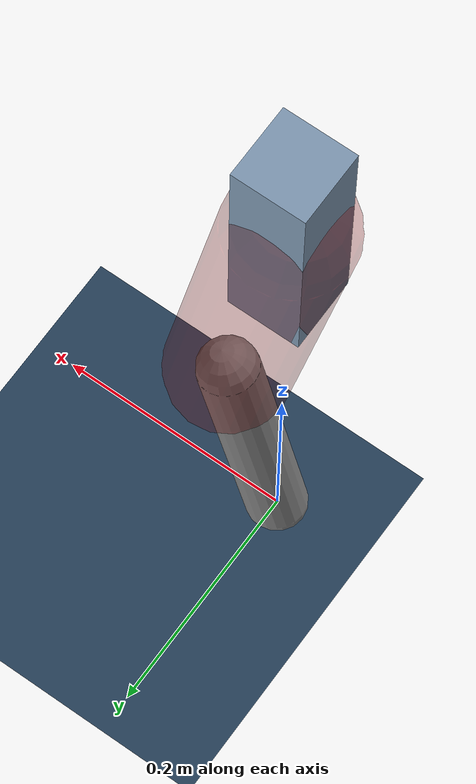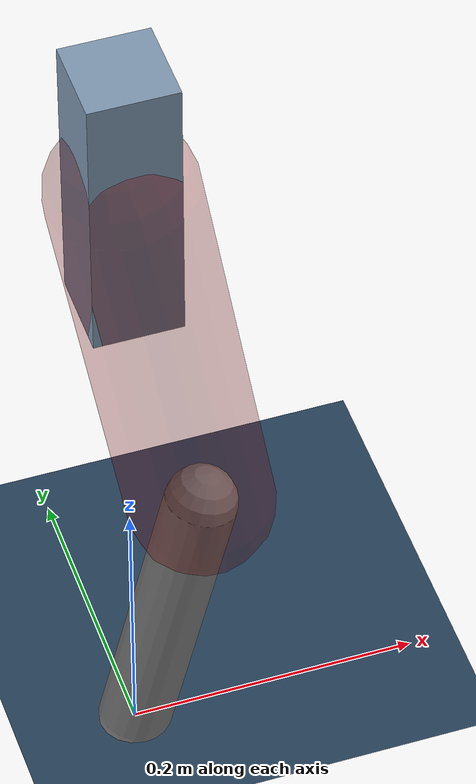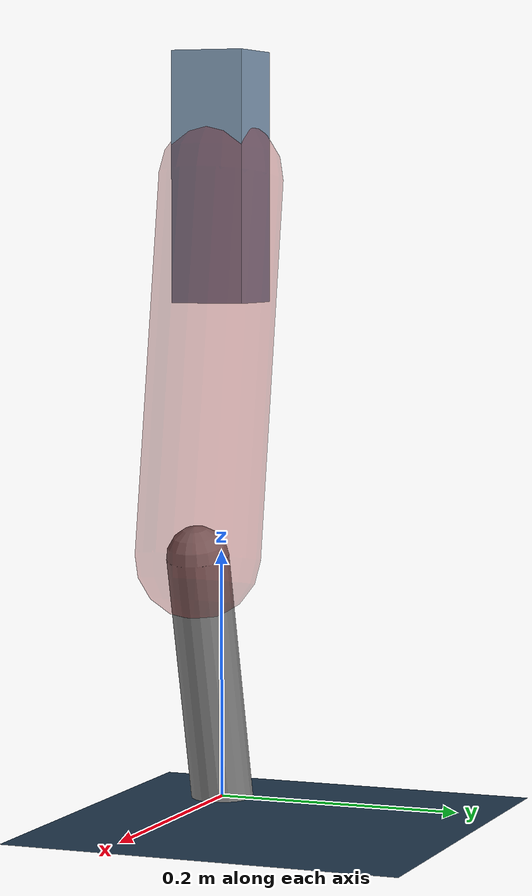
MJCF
<mujoco model="Hopper2D">
	<compiler inertiafromgeom="true" angle="radian" />
	<option timestep="0.001" integrator="implicit" cone="elliptic" solver="Newton" tolerance="1e-10" />

	<default>
		<geom contype="1" conaffinity="1" condim="3" friction="2 0.005 0.0001" solref="0.005 1" />
		<joint limited="true" damping="0.1" />
	</default>

	<asset>
		<texture name="skybox" type="skybox" builtin="gradient" rgb1=".4 .6 .8" rgb2="0 0 0" width="800" height="800" />
		<texture name="grid" type="2d" builtin="checker" rgb1=".1 .2 .3" rgb2=".2 .3 .4" width="300" height="300" mark="edge" markrgb=".2 .3 .4" />
		<material name="ground" texture="grid" texrepeat="1 1" texuniform="true" reflectance="0.1" />
		<material name="leg" rgba="0.5 0.6 0.7 1" />
	</asset>

	<worldbody>

		<geom name="floor" type="plane" size="5 5 0.25" material="ground" />

		<light directional="false" diffuse="0.8 0.8 0.8" specular="0.3 0.3 0.3" pos="0 0 2" dir="0 0 -1" />
		<light mode="targetbodycom" target="base" directional="false" diffuse="0.8 0.8 0.8" specular="0.3 0.3 0.3" pos="0 0 2" dir="0 0 -1" />

		<camera name="fixed" pos="0 -2 1" xyaxes="1 0 0 0 0 1" />
		<camera name="tracking" mode="trackcom" pos="0 -3 1" />

		<body name="root" pos="0 0 0.5004418206626828">
			<joint name="slide_x" type="slide" axis="1 0 0" range="-100 100" />
			<joint name="slide_z" type="slide" axis="0 0 1" range="0 10" />

			<body name="base" pos="0 0 0">
				<geom name="torso" type="box" size="0.03 0.03 0.1" mass="3.2670000000000003" material="leg" />

				<body name="link1" pos="0 0 0" euler="0 1.40809028643971 0">
					<joint type="hinge" axis="0 -1 0" pos="0 0 0" name="hinge1" limited="true" range="-3.14 3.14" stiffness="0" damping="0.1" />
					<geom name="thigh" type="capsule" fromto="0 0 0 0.30430774685341705 0 0" size="0.05" rgba="0.5 0 0 0.3" mass="1.000430916504226" />

					<body name="link2" pos="0.30430774685341705 0 0" euler="0 0.4041842710188033 0">
						<joint type="hinge" axis="0 -1 0" pos="0 0 0" name="hinge2" limited="true" range="-3.14 3.14" stiffness="0" damping="0.1" />
						<geom name="shank" type="capsule" fromto="0 0 0 0.20613407380926585 0 0" size="0.025" mass="0.4060206664283393" />

					</body>
				</body>
			</body>
		</body>
	</worldbody>

	<actuator>
		<motor name="torque1" joint="hinge1" ctrlrange="-117.85067201182494 117.85067201182494" ctrllimited="true" gear="1" />
		<motor name="torque2" joint="hinge2" ctrlrange="-101.61879326391531 101.61879326391531" ctrllimited="true" gear="1" />
	</actuator>
</mujoco>
